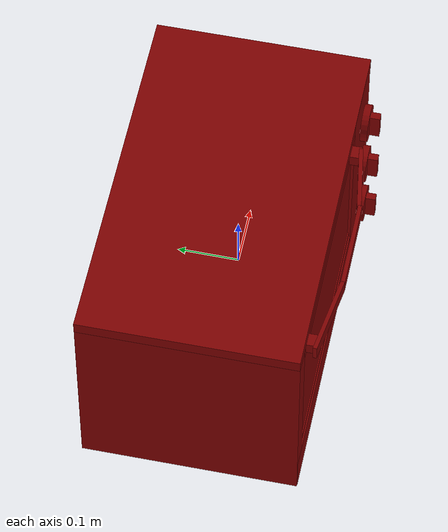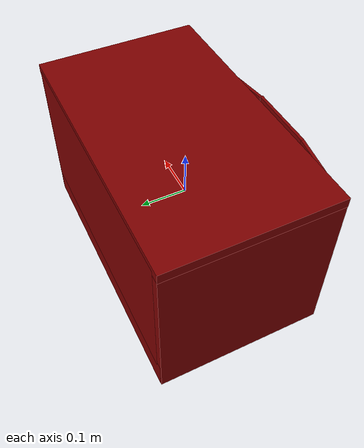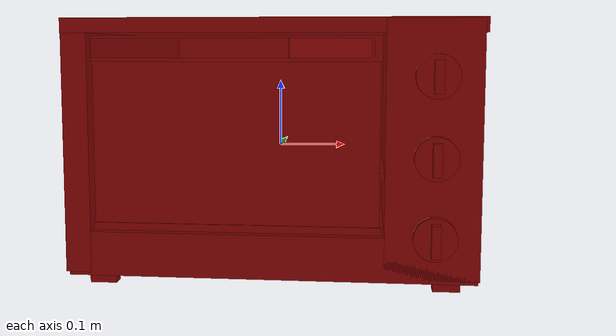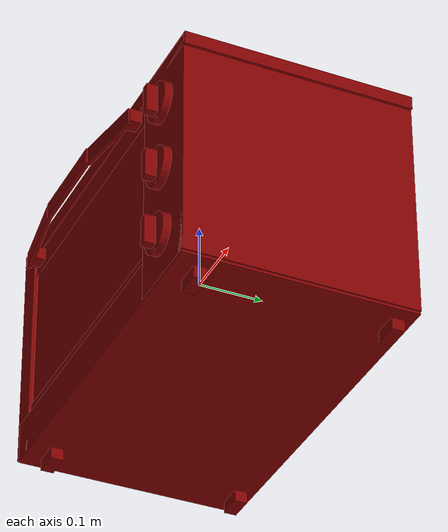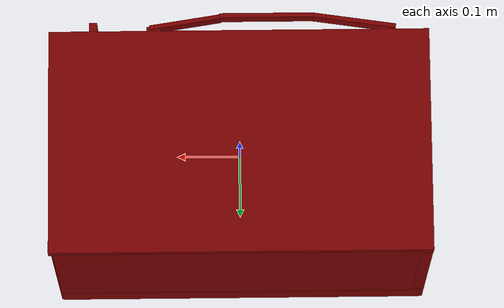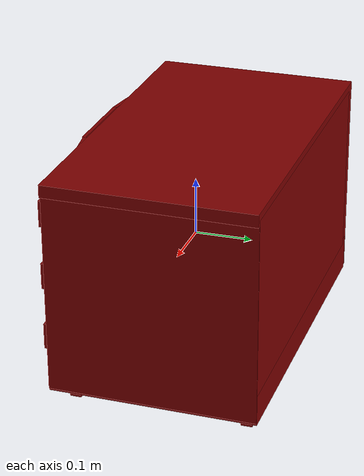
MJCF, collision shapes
<?xml version='1.0' encoding='UTF-8'?>
<mujoco model="model">
  <option timestep="0.002" gravity="0.0 0.0 -9.81"/>
  <compiler angle="radian"/>
  <asset>
    <mesh file="visuals/Body001.obj" name="Body001_vis"/>
    <mesh file="visuals/Door001.obj" name="Door001_vis"/>
    <mesh file="visuals/Door001_Clear.obj" name="Door001_Clear_vis"/>
    <mesh file="visuals/Knob001.obj" name="Knob001_vis"/>
    <mesh file="visuals/Knob002.obj" name="Knob002_vis"/>
    <mesh file="visuals/Knob003.obj" name="Knob003_vis"/>
    <mesh file="visuals/Shelf001.obj" name="Shelf001_vis"/>
    <texture file="visuals/T_BC001.png" name="Body001_material" type="2d"/>
    <material name="Body001_material" rgba="1 1 1 1.0" texture="Body001_material" shininess="3" specular="3"/>
    <texture file="visuals/T_BC001.png" name="Door001_material" type="2d"/>
    <material name="Door001_material" rgba="1 1 1 1.0" texture="Door001_material" shininess="0.4472135901451111" specular="0.3103448502657381"/>
    <material name="Door001_Clear_material" rgba="0.015459645539522171 0.015459645539522171 0.015459645539522171 0.75" shininess="0.4472135901451111" specular="0.3103448502657381"/>
    <texture file="visuals/T_BC001.png" name="Knob001_material" type="2d"/>
    <material name="Knob001_material" rgba="1 1 1 1.0" texture="Knob001_material" shininess="1" specular="1"/>
    <texture file="visuals/T_BC001.png" name="Knob002_material" type="2d"/>
    <material name="Knob002_material" rgba="1 1 1 1.0" texture="Knob002_material" shininess="1" specular="1"/>
    <texture file="visuals/T_BC001.png" name="Knob003_material" type="2d"/>
    <material name="Knob003_material" rgba="1 1 1 1.0" texture="Knob003_material" shininess="1" specular="1"/>
    <texture file="visuals/T_BC001.png" name="Shelf001_material" type="2d"/>
    <material name="Shelf001_material" rgba="1 1 1 1.0" texture="Shelf001_material" shininess="15" specular="15"/>
  </asset>
  <default>
    <default class="visual">
      <geom conaffinity="0" contype="0" group="1" type="mesh"/>
    </default>
    <default class="collision">
      <geom group="0" rgba="0.5 0 0 0.5"/>
    </default>
    <default class="spawn">
      <geom group="0" rgba="1 1 1 0.5" contype="0" conaffinity="0"/>
      <site group="0" rgba="1 1 1 0.5"/>
    </default>
    <default class="region">
      <geom group="1" conaffinity="0" contype="0" rgba="0 1 0 0"/>
    </default>
  </default>
  <worldbody>
    <body>
      <body name="object">
        <geom mesh="Body001_vis" type="mesh" solimp="0.998 0.998 0.001" solref="0.001 1" friction="0.95 0.3 0.1" class="visual" material="Body001_material"/>
        <geom class="collision" type="box" pos="-0.0001343539624940604 0.019654860720038414 0.1838960349559784" size="0.29995667934417725 0.17815753817558289 0.010728752240538597" quat="1.0 0.0 0.0 0.0" density="1000.0"/>
        <geom class="collision" type="box" pos="-0.2807686924934387 0.01965472474694252 0.009697983041405678" size="0.0186435766518116 0.17815738916397095 0.18326139450073242" quat="1.0 0.0 0.0 0.0" density="1000.0"/>
        <geom class="collision" type="box" pos="0.22865764796733856 0.01965470239520073 0.009697983041405678" size="0.0668712928891182 0.17815744876861572 0.18326076865196228" quat="1.0 0.0 0.0 0.0" density="1000.0"/>
        <geom class="collision" type="box" pos="-0.0005405489355325699 0.019658952951431274 -0.14570839703083038" size="0.2938140630722046 0.1781616359949112 0.032352983951568604" quat="1.0 0.0 0.0 0.0" density="1000.0"/>
        <geom class="collision" type="box" pos="0.006126949563622475 0.16364534199237823 0.028923572972416878" size="0.28741544485092163 0.1533634066581726 0.03417529538273811" quat="0.7071068286895752 0.7071067690849304 -1.5700924318127872e-16 -5.9269340452702814e-24" density="1000.0"/>
        <geom class="collision" type="box" pos="-0.2549467086791992 -0.014063801616430283 -0.03171567618846893" size="0.011304885149002075 0.10658203065395355 0.004841073416173458" quat="1.0 0.0 0.0 0.0" density="1000.0"/>
        <geom class="collision" type="box" pos="0.15050257742404938 -0.014063801616430283 -0.03171567618846893" size="0.011304885149002075 0.10658203065395355 0.004841073416173458" quat="1.0 0.0 0.0 0.0" density="1000.0"/>
        <geom class="collision" type="box" pos="-0.25301408767700195 -0.12118800729513168 -0.1854228675365448" size="0.019811633974313736 0.009857547469437122 0.011108455248177052" quat="7.549790126404332e-08 1.0 0.0 0.0" density="1000.0"/>
        <geom class="collision" type="box" pos="-0.25301408767700195 0.17456495761871338 -0.1854228675365448" size="0.019811633974313736 0.009857547469437122 0.011108455248177052" quat="7.549790126404332e-08 1.0 0.0 0.0" density="1000.0"/>
        <geom class="collision" type="box" pos="0.2519552707672119 -0.12118800729513168 -0.1854228675365448" size="0.019811633974313736 0.009857547469437122 0.011108455248177052" quat="7.549790126404332e-08 1.0 0.0 0.0" density="1000.0"/>
        <geom class="collision" type="box" pos="0.2519552707672119 0.17456495761871338 -0.1854228675365448" size="0.019811633974313736 0.009857547469437122 0.011108455248177052" quat="7.549790126404332e-08 1.0 0.0 0.0" density="1000.0"/>
        <body name="Door001">
          <joint axis="1.0 0.0 0.0" pos="-0.05032198131084442 -0.15732987225055695 -0.11024082452058792" limited="true" name="Door001_joint" range="0.0 1.5707963267948966" type="hinge" damping="1" frictionloss="1" armature=".01" stiffness="0.5" springref="-0.5"/>
          <geom mesh="Door001_vis" type="mesh" solimp="0.998 0.998 0.001" solref="0.001 1" friction="0.95 0.3 0.1" class="visual" material="Door001_material"/>
          <geom class="collision" type="box" pos="-0.04977979138493538 -0.1526668667793274 0.1511467695236206" size="0.20716610550880432 0.003928564488887787 0.018137522041797638" quat="1.0 0.0 0.0 0.0" density="1000.0"/>
          <geom class="collision" type="box" pos="-0.04401883855462074 -0.19126436114311218 0.1519629806280136" size="0.0749129056930542 0.0033679238986223936 0.013455389067530632" quat="1.0 0.0 0.0 0.0" density="1000.0"/>
          <geom class="collision" type="box" pos="0.08483265340328217 -0.18106567859649658 0.1519629806280136" size="0.05702793598175049 0.00336792366579175 0.013455397449433804" quat="0.9970701932907104 0.0 0.0 0.07649222761392593" density="1000.0"/>
          <geom class="collision" type="box" pos="-0.18372806906700134 -0.18141213059425354 0.1519629806280136" size="0.06623277068138123 0.00336792366579175 0.013455397449433804" quat="0.9973251819610596 0.0 0.0 -0.0730920359492302" density="1000.0"/>
          <geom class="collision" type="box" pos="0.13471080362796783 -0.16531458497047424 0.1519629806280136" size="0.011204984039068222 0.009104401804506779 0.010466745123267174" quat="1.0 0.0 0.0 0.0" density="1000.0"/>
          <geom class="collision" type="box" pos="-0.2329380363225937 -0.16318267583847046 0.1519629806280136" size="0.01068737730383873 0.009104405529797077 0.010466748848557472" quat="1.0 0.0 0.0 0.0" density="1000.0"/>
          <geom class="collision" type="box" pos="-0.04977979138493538 -0.1526668667793274 -0.10486912727355957" size="0.20716610550880432 0.003928564488887787 0.005460301414132118" quat="1.0 0.0 0.0 0.0" density="1000.0"/>
          <body name="Door001_Clear">
            <geom mesh="Door001_Clear_vis" type="mesh" solimp="0.998 0.998 0.001" solref="0.001 1" friction="0.95 0.3 0.1" class="visual" material="Door001_Clear_material"/>
            <geom class="collision" type="box" pos="-0.050102297216653824 -0.15317851305007935 0.017370522022247314" size="0.20479129254817963 0.001465618726797402 0.11689164489507675" quat="1.0 0.0 0.0 0.0" density="1000.0"/>
          </body>
        </body>
        <body name="Knob001">
          <joint axis="0.0 1.0 0.0" pos="0.2319774180650711 -0.17159435153007507 0.11367322504520416" limited="true" name="Knob001_joint" range="0.0 4.799655442984406" type="hinge" damping="0.05" armature="0.001"/>
          <geom mesh="Knob001_vis" type="mesh" solimp="0.998 0.998 0.001" solref="0.001 1" friction="0.95 0.3 0.1" class="visual" material="Knob001_material"/>
          <geom class="collision" type="cylinder" pos="0.2319774180650711 -0.16607272624969482 0.11367322504520416" size="0.030874023213982582 0.005967725999653339" quat="0.7071067094802856 0.70710688829422 -1.5700926965105832e-16 1.2790030626010778e-23" density="1000.0"/>
          <geom class="collision" type="box" pos="0.2319774180650711 -0.1777215152978897 0.11367322504520416" size="0.006241052411496639 0.010996297001838684 0.022945739328861237" quat="1.0 0.0 0.0 0.0" density="1000.0"/>
        </body>
        <body name="Knob002">
          <joint axis="0.0 1.0 0.0" pos="0.2319774478673935 -0.17202603816986084 0.0008192092645913363" limited="true" name="Knob002_joint" range="0.0 4.939281783143953" type="hinge" damping="0.05" armature="0.001"/>
          <geom mesh="Knob002_vis" type="mesh" solimp="0.998 0.998 0.001" solref="0.001 1" friction="0.95 0.3 0.1" class="visual" material="Knob002_material"/>
          <geom class="collision" type="cylinder" pos="0.2319774478673935 -0.1665044128894806 0.0008192090317606926" size="0.030874023213982582 0.005967725999653339" quat="0.7071067094802856 0.70710688829422 -1.5700926965105832e-16 1.2790030626010778e-23" density="1000.0"/>
          <geom class="collision" type="box" pos="0.2319774478673935 -0.17815320193767548 0.0008192090317606926" size="0.006241052411496639 0.010996297001838684 0.022945739328861237" quat="1.0 0.0 0.0 0.0" density="1000.0"/>
        </body>
        <body name="Knob003">
          <joint axis="0.0 1.0 0.0" pos="0.2319774180650711 -0.17202600836753845 -0.11159078031778336" limited="true" name="Knob003_joint" range="0.0 4.014257279586958" type="hinge" damping="0.05" armature="0.001"/>
          <geom mesh="Knob003_vis" type="mesh" solimp="0.998 0.998 0.001" solref="0.001 1" friction="0.95 0.3 0.1" class="visual" material="Knob003_material"/>
          <geom class="collision" type="cylinder" pos="0.2319774180650711 -0.1665043830871582 -0.11159078031778336" size="0.030874023213982582 0.005967725999653339" quat="0.7071067094802856 0.70710688829422 -1.5700926965105832e-16 1.2790030626010778e-23" density="1000.0"/>
          <geom class="collision" type="box" pos="0.2319774180650711 -0.1781531721353531 -0.11159078031778336" size="0.006241052411496639 0.010996297001838684 0.022945739328861237" quat="1.0 0.0 0.0 0.0" density="1000.0"/>
        </body>
        <body name="Shelf001">
          <joint axis="0.0 -1.0 0.0" pos="-0.050639212131500244 -0.0005906140431761742 -0.016924245283007622" limited="true" name="Shelf001_joint" range="0.0 0.2" type="slide" damping="1" frictionloss="1" armature=".01" stiffness="0.05"/>
          <geom mesh="Shelf001_vis" type="mesh" solimp="0.998 0.998 0.001" solref="0.001 1" friction="0.95 0.3 0.1" class="visual" material="Shelf001_material"/>
          <geom class="collision" type="box" pos="-0.050220146775245667 -0.0028000101447105408 -0.01799209602177143" size="0.20157098770141602 0.11656150966882706 0.002265059622004628" quat="1.0 0.0 0.0 0.0" density="1000.0"/>
        </body>
        <geom class="region" name="reg_int" type="box" pos="-0.05011177808046341 -0.011058561503887177 0.027926214039325714" size="0.21270941942930222 0.140784852206707 0.14422491937875748"/>
        <geom class="region" name="reg_main" type="box" pos="0.0 0.01965893805027008 0.0" size="0.300091028213501 0.1781616061925888 0.19742831587791443"/>
      </body>
    </body>
  </worldbody>
  <actuator>
    <motor name="Door001_joint_actuator" joint="Door001_joint" gear="30"/>
    <motor name="Knob001_joint_actuator" joint="Knob001_joint" gear="10"/>
    <motor name="Knob002_joint_actuator" joint="Knob002_joint" gear="10"/>
    <motor name="Knob003_joint_actuator" joint="Knob003_joint" gear="10"/>
    <motor name="Shelf001_joint_actuator" joint="Shelf001_joint" gear="10"/>
  </actuator>
</mujoco>
